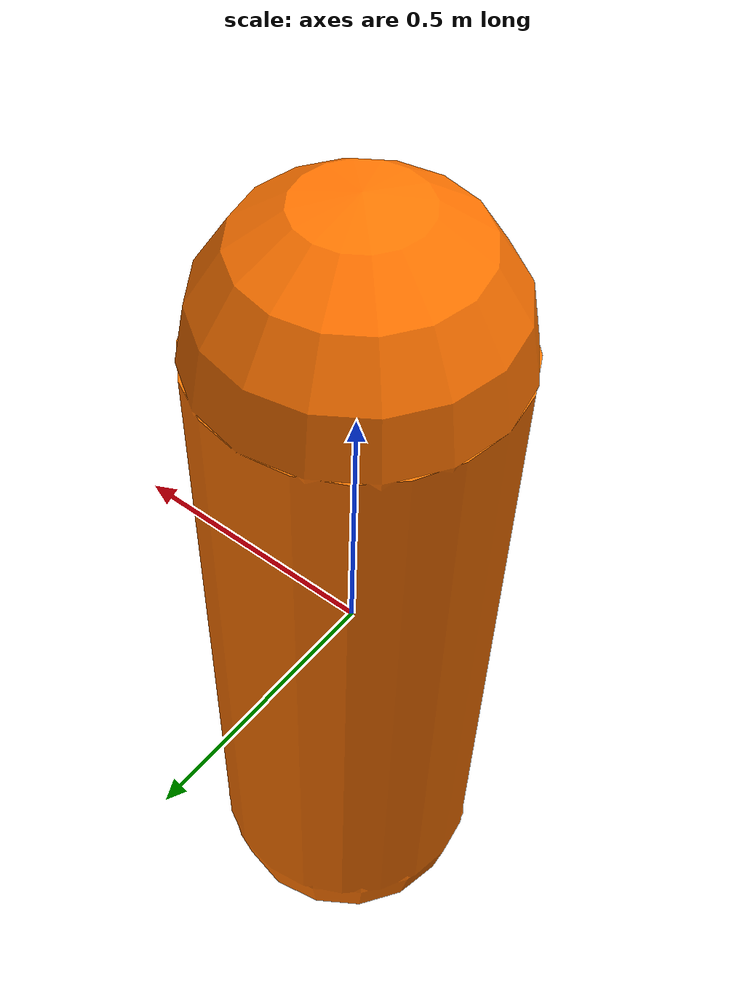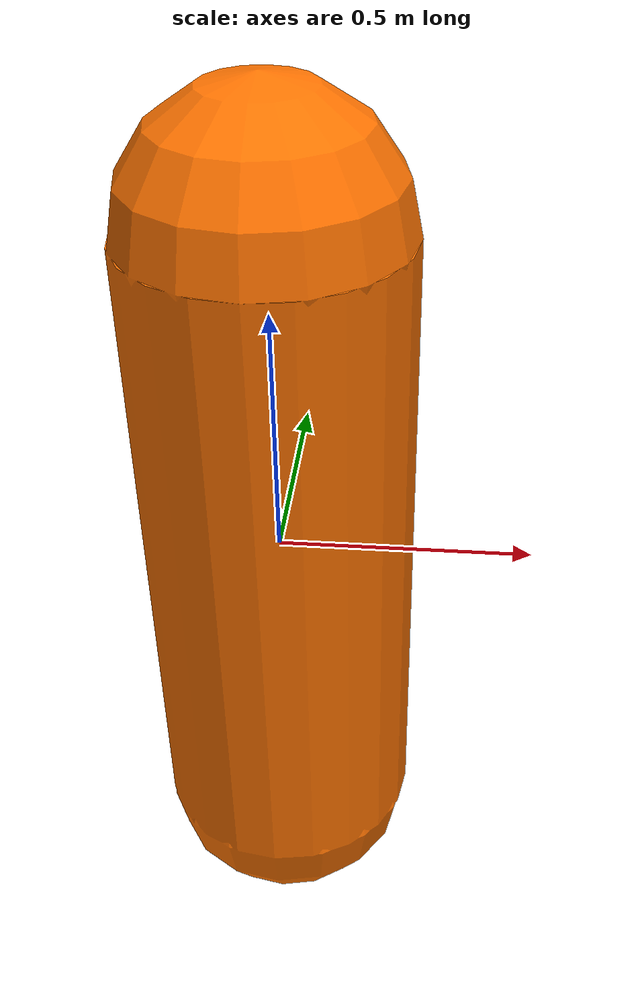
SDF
<?xml version="1.0" ?>
<sdf version="1.7">
  <model name="basic_buoy_orange">
    <link name="link">
      <inertial>
        <pose>0 0 -0.25 0 0 0</pose>
        <mass>138.9</mass>
        <inertia>
          <ixx>13.89</ixx>
          <iyy>13.89</iyy>
          <izz>6.94</izz>
        </inertia>
      </inertial>

      <collision name="collision">
        <geometry>
          <capsule>
            <radius>0.26665</radius>
            <length>1.3</length>
          </capsule>
        </geometry>
      </collision>

      <visual name="visual">
        <geometry>
          <capsule>
            <radius>0.26665</radius>
            <length>1.3</length>
          </capsule>
        </geometry>
        <material>
          <ambient>1.0 0.45 0.0 1.0</ambient>
          <diffuse>1.0 0.45 0.0 1.0</diffuse>
          <specular>0.5 0.5 0.5 1.0</specular>
        </material>
      </visual>
    </link>

    <plugin name="vrx::PolyhedraBuoyancyDrag" filename="libPolyhedraBuoyancyDrag.so">
      <fluid_density>1000</fluid_density>
      <fluid_level>0.0</fluid_level>
      <linear_drag>25.0</linear_drag>
      <angular_drag>2.0</angular_drag>
      <buoyancy name="collision_outer">
        <link_name>link</link_name>
        <pose>0 0 -0.15 0 0 0</pose>
        <geometry>
          <cylinder>
            <radius>0.26665</radius>
            <length>1.3</length>
          </cylinder>
        </geometry>
      </buoyancy>
      <wavefield>
        <topic>/vrx/wavefield/parameters</topic>
      </wavefield>
    </plugin>
  </model>
</sdf>
